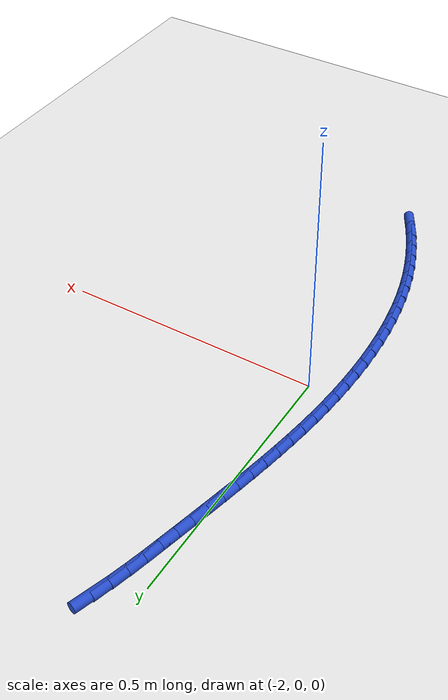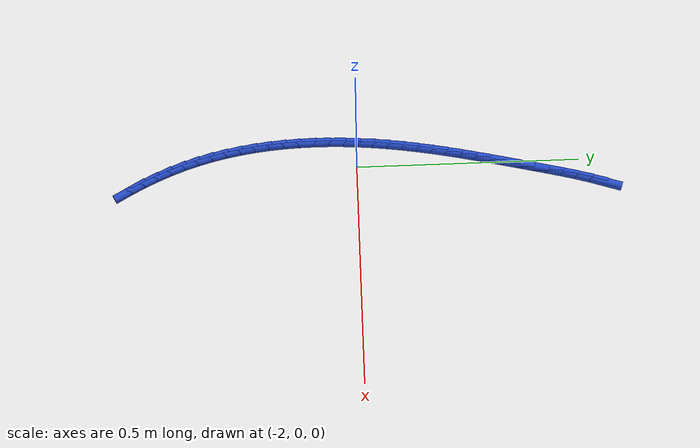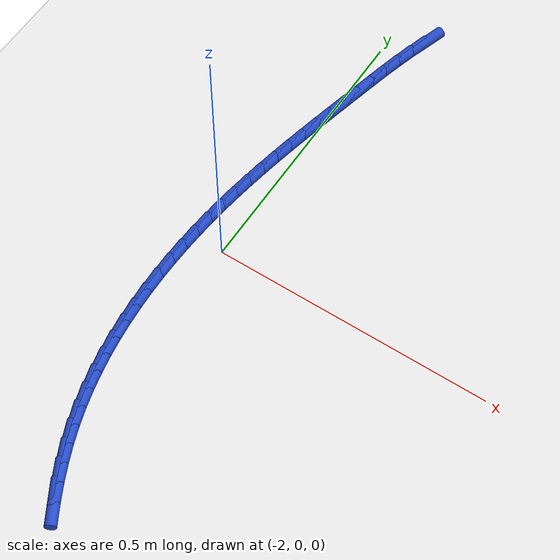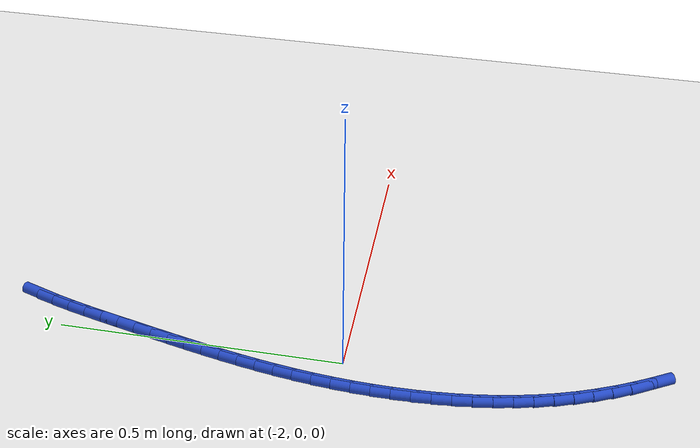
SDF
<sdf version="1.6">
 <world name="default">
  <model name="ground_plane">
   <static>1</static>
   <link name="link">
    <collision name="collision">
     <geometry><plane><normal>0 0 1</normal><size>100 100</size></plane></geometry>
     <surface><friction><ode><mu>100</mu><mu2>50</mu2></ode></friction></surface>
    </collision>
    <visual name="visual">
     <cast_shadows>0</cast_shadows>
     <geometry><plane><normal>0 0 1</normal><size>100 100</size></plane></geometry>
     <material>
      <script><uri>file://media/materials/scripts/gazebo.material</uri><name>Gazebo/WhiteGlow</name></script>
     </material>
    </visual>
   </link>
  </model>
  <model name="line">
   <link name="link_83">
    <pose>-1.941600711285096 0.5525623372042585 0.01 0 1.57 1.2587095356892897</pose>
    <collision name="collision">
     <geometry><cylinder><radius>0.01</radius><length>0.08</length></cylinder></geometry>
    </collision>
    <visual name="visual">
     <material>
      <script><name>Gazebo/Blue</name><uri>file://media/materials/scripts/gazebo.material</uri></script>
     </material>
     <geometry><cylinder><radius>0.01</radius><length>0.08</length></cylinder></geometry>
    </visual>
   </link>
   <link name="link_84">
    <pose>-1.9517601070557218 0.5210730246318219 0.01 0 1.57 1.292534903014757</pose>
    <collision name="collision">
     <geometry><cylinder><radius>0.01</radius><length>0.08</length></cylinder></geometry>
    </collision>
    <visual name="visual">
     <material>
      <script><name>Gazebo/Blue</name><uri>file://media/materials/scripts/gazebo.material</uri></script>
     </material>
     <geometry><cylinder><radius>0.01</radius><length>0.08</length></cylinder></geometry>
    </visual>
   </link>
   <link name="link_85">
    <pose>-1.9609016367195329 0.489073038936755 0.01 0 1.57 1.3172732992020897</pose>
    <collision name="collision">
     <geometry><cylinder><radius>0.01</radius><length>0.08</length></cylinder></geometry>
    </collision>
    <visual name="visual">
     <material>
      <script><name>Gazebo/Blue</name><uri>file://media/materials/scripts/gazebo.material</uri></script>
     </material>
     <geometry><cylinder><radius>0.01</radius><length>0.08</length></cylinder></geometry>
    </visual>
   </link>
   <link name="link_86">
    <pose>-1.9692805179702486 0.4567343876796448 0.01 0 1.57 1.333211011170251</pose>
    <collision name="collision">
     <geometry><cylinder><radius>0.01</radius><length>0.08</length></cylinder></geometry>
    </collision>
    <visual name="visual">
     <material>
      <script><name>Gazebo/Blue</name><uri>file://media/materials/scripts/gazebo.material</uri></script>
     </material>
     <geometry><cylinder><radius>0.01</radius><length>0.08</length></cylinder></geometry>
    </visual>
   </link>
   <link name="link_87">
    <pose>-1.9771519685015868 0.42422907842107754 0.01 0 1.57 1.3405168452358298</pose>
    <collision name="collision">
     <geometry><cylinder><radius>0.01</radius><length>0.08</length></cylinder></geometry>
    </collision>
    <visual name="visual">
     <material>
      <script><name>Gazebo/Blue</name><uri>file://media/materials/scripts/gazebo.material</uri></script>
     </material>
     <geometry><cylinder><radius>0.01</radius><length>0.08</length></cylinder></geometry>
    </visual>
   </link>
   <link name="link_88">
    <pose>-1.984771200856566 0.3917291153859846 0.01 0 1.57 1.3412952254703607</pose>
    <collision name="collision">
     <geometry><cylinder><radius>0.01</radius><length>0.08</length></cylinder></geometry>
    </collision>
    <visual name="visual">
     <material>
      <script><name>Gazebo/Blue</name><uri>file://media/materials/scripts/gazebo.material</uri></script>
     </material>
     <geometry><cylinder><radius>0.01</radius><length>0.08</length></cylinder></geometry>
    </visual>
   </link>
   <link name="link_89">
    <pose>-1.9923316628504433 0.35936650322423613 0.01 0 1.57 1.3427809089515228</pose>
    <collision name="collision">
     <geometry><cylinder><radius>0.01</radius><length>0.08</length></cylinder></geometry>
    </collision>
    <visual name="visual">
     <material>
      <script><name>Gazebo/Blue</name><uri>file://media/materials/scripts/gazebo.material</uri></script>
     </material>
     <geometry><cylinder><radius>0.01</radius><length>0.08</length></cylinder></geometry>
    </visual>
   </link>
   <link name="link_90">
    <pose>-1.999811316487156 0.3271336954017702 0.01 0 1.57 1.3465779267250688</pose>
    <collision name="collision">
     <geometry><cylinder><radius>0.01</radius><length>0.08</length></cylinder></geometry>
    </collision>
    <visual name="visual">
     <material>
      <script><name>Gazebo/Blue</name><uri>file://media/materials/scripts/gazebo.material</uri></script>
     </material>
     <geometry><cylinder><radius>0.01</radius><length>0.08</length></cylinder></geometry>
    </visual>
   </link>
   <link name="link_91">
    <pose>-2.007141159115543 0.2949927305132061 0.01 0 1.57 1.3527046173166308</pose>
    <collision name="collision">
     <geometry><cylinder><radius>0.01</radius><length>0.08</length></cylinder></geometry>
    </collision>
    <visual name="visual">
     <material>
      <script><name>Gazebo/Blue</name><uri>file://media/materials/scripts/gazebo.material</uri></script>
     </material>
     <geometry><cylinder><radius>0.01</radius><length>0.08</length></cylinder></geometry>
    </visual>
   </link>
   <link name="link_92">
    <pose>-2.0142521880844404 0.26290564715316295 0.01 0 1.57 1.361169579254887</pose>
    <collision name="collision">
     <geometry><cylinder><radius>0.01</radius><length>0.08</length></cylinder></geometry>
    </collision>
    <visual name="visual">
     <material>
      <script><name>Gazebo/Blue</name><uri>file://media/materials/scripts/gazebo.material</uri></script>
     </material>
     <geometry><cylinder><radius>0.01</radius><length>0.08</length></cylinder></geometry>
    </visual>
   </link>
   <link name="link_93">
    <pose>-2.0210754007426863 0.23083448391625977 0.01 0 1.57 1.3719704647574542</pose>
    <collision name="collision">
     <geometry><cylinder><radius>0.01</radius><length>0.08</length></cylinder></geometry>
    </collision>
    <visual name="visual">
     <material>
      <script><name>Gazebo/Blue</name><uri>file://media/materials/scripts/gazebo.material</uri></script>
     </material>
     <geometry><cylinder><radius>0.01</radius><length>0.08</length></cylinder></geometry>
    </visual>
   </link>
   <link name="link_94">
    <pose>-2.0275417944391183 0.19874127939711578 0.01 0 1.57 1.3850924975192622</pose>
    <collision name="collision">
     <geometry><cylinder><radius>0.01</radius><length>0.08</length></cylinder></geometry>
    </collision>
    <visual name="visual">
     <material>
      <script><name>Gazebo/Blue</name><uri>file://media/materials/scripts/gazebo.material</uri></script>
     </material>
     <geometry><cylinder><radius>0.01</radius><length>0.08</length></cylinder></geometry>
    </visual>
   </link>
   <link name="link_95">
    <pose>-2.0335823665225736 0.16658807219035 0.01 0 1.57 1.4005067685360666</pose>
    <collision name="collision">
     <geometry><cylinder><radius>0.01</radius><length>0.08</length></cylinder></geometry>
    </collision>
    <visual name="visual">
     <material>
      <script><name>Gazebo/Blue</name><uri>file://media/materials/scripts/gazebo.material</uri></script>
     </material>
     <geometry><cylinder><radius>0.01</radius><length>0.08</length></cylinder></geometry>
    </visual>
   </link>
   <link name="link_96">
    <pose>-2.0391281143418896 0.134336900890582 0.01 0 1.57 1.4181683949833093</pose>
    <collision name="collision">
     <geometry><cylinder><radius>0.01</radius><length>0.08</length></cylinder></geometry>
    </collision>
    <visual name="visual">
     <material>
      <script><name>Gazebo/Blue</name><uri>file://media/materials/scripts/gazebo.material</uri></script>
     </material>
     <geometry><cylinder><radius>0.01</radius><length>0.08</length></cylinder></geometry>
    </visual>
   </link>
   <link name="link_97">
    <pose>-2.0441100352459034 0.10194980409243015 0.01 0 1.57 1.4380146603604618</pose>
    <collision name="collision">
     <geometry><cylinder><radius>0.01</radius><length>0.08</length></cylinder></geometry>
    </collision>
    <visual name="visual">
     <material>
      <script><name>Gazebo/Blue</name><uri>file://media/materials/scripts/gazebo.material</uri></script>
     </material>
     <geometry><cylinder><radius>0.01</radius><length>0.08</length></cylinder></geometry>
    </visual>
   </link>
   <link name="link_98">
    <pose>-2.0484591265834537 0.069388820390514 0.01 0 1.57 1.4599597637354234</pose>
    <collision name="collision">
     <geometry><cylinder><radius>0.01</radius><length>0.08</length></cylinder></geometry>
    </collision>
    <visual name="visual">
     <material>
      <script><name>Gazebo/Blue</name><uri>file://media/materials/scripts/gazebo.material</uri></script>
     </material>
     <geometry><cylinder><radius>0.01</radius><length>0.08</length></cylinder></geometry>
    </visual>
   </link>
   <link name="link_99">
    <pose>-2.052106461139097 0.0366163607824665 0.01 0 1.57 1.4836185498284373</pose>
    <collision name="collision">
     <geometry><cylinder><radius>0.01</radius><length>0.08</length></cylinder></geometry>
    </collision>
    <visual name="visual">
     <material>
      <script><name>Gazebo/Blue</name><uri>file://media/materials/scripts/gazebo.material</uri></script>
     </material>
     <geometry><cylinder><radius>0.01</radius><length>0.08</length></cylinder></geometry>
    </visual>
   </link>
   <link name="link_100">
    <pose>-2.0549896836856476 0.003627280156072757 0.01 0 1.57 1.5084908344666583</pose>
    <collision name="collision">
     <geometry><cylinder><radius>0.01</radius><length>0.08</length></cylinder></geometry>
    </collision>
    <visual name="visual">
     <material>
      <script><name>Gazebo/Blue</name><uri>file://media/materials/scripts/gazebo.material</uri></script>
     </material>
     <geometry><cylinder><radius>0.01</radius><length>0.08</length></cylinder></geometry>
    </visual>
   </link>
   <link name="link_101">
    <pose>-2.0570580175692363 -0.02952640673597542 0.01 0 1.57 1.5346175772512671</pose>
    <collision name="collision">
     <geometry><cylinder><radius>0.01</radius><length>0.08</length></cylinder></geometry>
    </collision>
    <visual name="visual">
     <material>
      <script><name>Gazebo/Blue</name><uri>file://media/materials/scripts/gazebo.material</uri></script>
     </material>
     <geometry><cylinder><radius>0.01</radius><length>0.08</length></cylinder></geometry>
    </visual>
   </link>
   <link name="link_102">
    <pose>-2.0582618647114463 -0.06278686687550247 0.01 0 1.57 1.5620974306779905</pose>
    <collision name="collision">
     <geometry><cylinder><radius>0.01</radius><length>0.08</length></cylinder></geometry>
    </collision>
    <visual name="visual">
     <material>
      <script><name>Gazebo/Blue</name><uri>file://media/materials/scripts/gazebo.material</uri></script>
     </material>
     <geometry><cylinder><radius>0.01</radius><length>0.08</length></cylinder></geometry>
    </visual>
   </link>
   <link name="link_103">
    <pose>-2.0585516270338564 -0.09609626724433303 0.01 0 1.57 -1.5505615422788779</pose>
    <collision name="collision">
     <geometry><cylinder><radius>0.01</radius><length>0.08</length></cylinder></geometry>
    </collision>
    <visual name="visual">
     <material>
      <script><name>Gazebo/Blue</name><uri>file://media/materials/scripts/gazebo.material</uri></script>
     </material>
     <geometry><cylinder><radius>0.01</radius><length>0.08</length></cylinder></geometry>
    </visual>
   </link>
   <link name="link_104">
    <pose>-2.05787770645805 -0.12939677482429163 0.01 0 1.57 -1.520072208334712</pose>
    <collision name="collision">
     <geometry><cylinder><radius>0.01</radius><length>0.08</length></cylinder></geometry>
    </collision>
    <visual name="visual">
     <material>
      <script><name>Gazebo/Blue</name><uri>file://media/materials/scripts/gazebo.material</uri></script>
     </material>
     <geometry><cylinder><radius>0.01</radius><length>0.08</length></cylinder></geometry>
    </visual>
   </link>
   <link name="link_105">
    <pose>-2.056190504905607 -0.1626305565972027 0.01 0 1.57 -1.4879256929430271</pose>
    <collision name="collision">
     <geometry><cylinder><radius>0.01</radius><length>0.08</length></cylinder></geometry>
    </collision>
    <visual name="visual">
     <material>
      <script><name>Gazebo/Blue</name><uri>file://media/materials/scripts/gazebo.material</uri></script>
     </material>
     <geometry><cylinder><radius>0.01</radius><length>0.08</length></cylinder></geometry>
    </visual>
   </link>
   <link name="link_106">
    <pose>-2.0534404242981097 -0.195739779544891 0.01 0 1.57 -1.4540227133127657</pose>
    <collision name="collision">
     <geometry><cylinder><radius>0.01</radius><length>0.08</length></cylinder></geometry>
    </collision>
    <visual name="visual">
     <material>
      <script><name>Gazebo/Blue</name><uri>file://media/materials/scripts/gazebo.material</uri></script>
     </material>
     <geometry><cylinder><radius>0.01</radius><length>0.08</length></cylinder></geometry>
    </visual>
   </link>
   <link name="link_107">
    <pose>-2.0495778665571387 -0.22866661064918087 0.01 0 1.57 -1.4182688078830175</pose>
    <collision name="collision">
     <geometry><cylinder><radius>0.01</radius><length>0.08</length></cylinder></geometry>
    </collision>
    <visual name="visual">
     <material>
      <script><name>Gazebo/Blue</name><uri>file://media/materials/scripts/gazebo.material</uri></script>
     </material>
     <geometry><cylinder><radius>0.01</radius><length>0.08</length></cylinder></geometry>
    </visual>
   </link>
   <link name="link_108">
    <pose>-2.0445532336042755 -0.261353216891897 0.01 0 1.57 -1.3805776206470064</pose>
    <collision name="collision">
     <geometry><cylinder><radius>0.01</radius><length>0.08</length></cylinder></geometry>
    </collision>
    <visual name="visual">
     <material>
      <script><name>Gazebo/Blue</name><uri>file://media/materials/scripts/gazebo.material</uri></script>
     </material>
     <geometry><cylinder><radius>0.01</radius><length>0.08</length></cylinder></geometry>
    </visual>
   </link>
   <link name="link_109">
    <pose>-2.038316927361101 -0.29374176525486373 0.01 0 1.57 -1.340874949353112</pose>
    <collision name="collision">
     <geometry><cylinder><radius>0.01</radius><length>0.08</length></cylinder></geometry>
    </collision>
    <visual name="visual">
     <material>
      <script><name>Gazebo/Blue</name><uri>file://media/materials/scripts/gazebo.material</uri></script>
     </material>
     <geometry><cylinder><radius>0.01</radius><length>0.08</length></cylinder></geometry>
    </visual>
   </link>
   <link name="link_110">
    <pose>-2.0308193497491973 -0.32577442271990587 0.01 0 1.57 -1.2991035666641744</pose>
    <collision name="collision">
     <geometry><cylinder><radius>0.01</radius><length>0.08</length></cylinder></geometry>
    </collision>
    <visual name="visual">
     <material>
      <script><name>Gazebo/Blue</name><uri>file://media/materials/scripts/gazebo.material</uri></script>
     </material>
     <geometry><cylinder><radius>0.01</radius><length>0.08</length></cylinder></geometry>
    </visual>
   </link>
   <link name="link_111">
    <pose>-2.0220109026901456 -0.3573933562688479 0.01 0 1.57 -1.255236196952374</pose>
    <collision name="collision">
     <geometry><cylinder><radius>0.01</radius><length>0.08</length></cylinder></geometry>
    </collision>
    <visual name="visual">
     <material>
      <script><name>Gazebo/Blue</name><uri>file://media/materials/scripts/gazebo.material</uri></script>
     </material>
     <geometry><cylinder><radius>0.01</radius><length>0.08</length></cylinder></geometry>
    </visual>
   </link>
   <link name="link_112">
    <pose>-2.0118422064098866 -0.38854085048901654 0.01 0 1.57 -1.2105775053051913</pose>
    <collision name="collision">
     <geometry><cylinder><radius>0.01</radius><length>0.08</length></cylinder></geometry>
    </collision>
    <visual name="visual">
     <material>
      <script><name>Gazebo/Blue</name><uri>file://media/materials/scripts/gazebo.material</uri></script>
     </material>
     <geometry><cylinder><radius>0.01</radius><length>0.08</length></cylinder></geometry>
    </visual>
   </link>
   <link name="link_113">
    <pose>-2.0003019929701433 -0.4191797216766749 0.01 0 1.57 -1.1679847802019814</pose>
    <collision name="collision">
     <geometry><cylinder><radius>0.01</radius><length>0.08</length></cylinder></geometry>
    </collision>
    <visual name="visual">
     <material>
      <script><name>Gazebo/Blue</name><uri>file://media/materials/scripts/gazebo.material</uri></script>
     </material>
     <geometry><cylinder><radius>0.01</radius><length>0.08</length></cylinder></geometry>
    </visual>
   </link>
   <link name="link_114">
    <pose>-1.98746032779725 -0.4493166022533103 0.01 0 1.57 -1.127893046634852</pose>
    <collision name="collision">
     <geometry><cylinder><radius>0.01</radius><length>0.08</length></cylinder></geometry>
    </collision>
    <visual name="visual">
     <material>
      <script><name>Gazebo/Blue</name><uri>file://media/materials/scripts/gazebo.material</uri></script>
     </material>
     <geometry><cylinder><radius>0.01</radius><length>0.08</length></cylinder></geometry>
    </visual>
   </link>
   <link name="link_115">
    <pose>-1.9733977298695593 -0.4789637562055916 0.01 0 1.57 -1.0903391529698638</pose>
    <collision name="collision">
     <geometry><cylinder><radius>0.01</radius><length>0.08</length></cylinder></geometry>
    </collision>
    <visual name="visual">
     <material>
      <script><name>Gazebo/Blue</name><uri>file://media/materials/scripts/gazebo.material</uri></script>
     </material>
     <geometry><cylinder><radius>0.01</radius><length>0.08</length></cylinder></geometry>
    </visual>
   </link>
   <link name="link_116">
    <pose>-1.9581947181654251 -0.5081334475201871 0.01 0 1.57 -1.055325712343465</pose>
    <collision name="collision">
     <geometry><cylinder><radius>0.01</radius><length>0.08</length></cylinder></geometry>
    </collision>
    <visual name="visual">
     <material>
      <script><name>Gazebo/Blue</name><uri>file://media/materials/scripts/gazebo.material</uri></script>
     </material>
     <geometry><cylinder><radius>0.01</radius><length>0.08</length></cylinder></geometry>
    </visual>
   </link>
  </model>
 </world>
</sdf>
